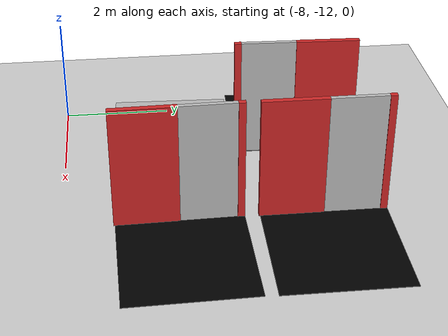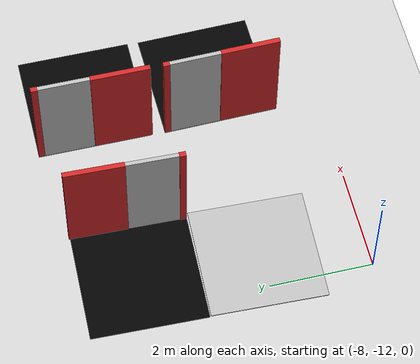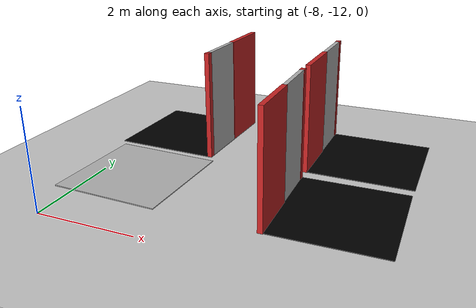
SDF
<sdf version="1.6">
 <world name="default">
  <model name="ground_plane">
   <static>1</static>
   <link name="link">
    <collision name="collision">
     <geometry><plane><normal>0 0 1</normal><size>100 100</size></plane></geometry>
     <surface>
      <contact><collide_bitmask>65535</collide_bitmask></contact>
      <friction><ode><mu>100</mu><mu2>50</mu2></ode></friction>
     </surface>
    </collision>
    <visual name="visual">
     <cast_shadows>0</cast_shadows>
     <geometry><plane><normal>0 0 1</normal><size>100 100</size></plane></geometry>
     <material>
      <script><uri>file://media/materials/scripts/gazebo.material</uri><name>Gazebo/Grey</name></script>
     </material>
    </visual>
   </link>
  </model>
  <model name="elevator_amzn_0">
   <link name="link">
    <inertial>
     <mass>800</mass>
     <inertia><ixx>1</ixx><ixy>0</ixy><ixz>0</ixz><iyy>1</iyy><iyz>0</iyz><izz>1</izz></inertia>
    </inertial>
    <visual name="floor_visual"><geometry><box><size>2.25 2.25 0.02</size></box></geometry></visual>
    <collision name="floor_collision">
     <geometry><box><size>2.25 2.25 0.02</size></box></geometry>
     <surface>
      <friction>
       <ode><mu>1</mu><mu2>1</mu2><fdir1>0 0 0</fdir1><slip1>0</slip1><slip2>0</slip2></ode>
       <torsional>
        <coefficient>1</coefficient>
        <patch_radius>0</patch_radius>
        <surface_radius>0</surface_radius>
        <use_patch_radius>1</use_patch_radius>
        <ode><slip>0</slip></ode>
       </torsional>
      </friction>
      <bounce><restitution_coefficient>0</restitution_coefficient><threshold>1e+06</threshold></bounce>
      <contact>
       <collide_without_contact>0</collide_without_contact>
       <collide_without_contact_bitmask>1</collide_without_contact_bitmask>
       <collide_bitmask>1</collide_bitmask>
       <ode>
        <soft_cfm>0</soft_cfm>
        <soft_erp>0.2</soft_erp>
        <kp>1e+13</kp>
        <kd>1</kd>
        <max_vel>0.01</max_vel>
        <min_depth>0</min_depth>
       </ode>
       <bullet>
        <split_impulse>1</split_impulse>
        <split_impulse_penetration_threshold>-0.01</split_impulse_penetration_threshold>
        <soft_cfm>0</soft_cfm>
        <soft_erp>0.2</soft_erp>
        <kp>1e+13</kp>
        <kd>1</kd>
       </bullet>
      </contact>
     </surface>
    </collision>
   </link>
   <static>0</static>
   <pose>-7.26532 -9.94569 0.009946 0.000173 -9.8e-05 -0.038592</pose>
  </model>
  <model name="elevator_small_ramp_2">
   <link name="link">
    <inertial>
     <mass>800</mass>
     <inertia><ixx>1</ixx><ixy>0</ixy><ixz>0</ixz><iyy>1</iyy><iyz>0</iyz><izz>1</izz></inertia>
    </inertial>
    <visual name="wall1_visual">
     <pose>1.0745 0.5725 1.125 0 -0 0</pose>
     <geometry><box><size>0.1 1.15 2.25</size></box></geometry>
     <material>
      <script><name>Gazebo/Red</name><uri>__default__</uri></script>
      <shader type="vertex"><normal_map>__default__</normal_map></shader>
      <ambient>1 0 0 1</ambient>
      <diffuse>1 0 0 1</diffuse>
      <specular>0.1 0.1 0.1 1</specular>
      <emissive>0 0 0 1</emissive>
     </material>
    </visual>
    <visual name="wall2_visual">
     <pose>1.0745 -1.0625 1.125 0 -0 0</pose>
     <geometry><box><size>0.1 0.125 2.25</size></box></geometry>
     <material>
      <script><name>Gazebo/Red</name><uri>__default__</uri></script>
      <shader type="vertex"><normal_map>__default__</normal_map></shader>
      <ambient>1 0 0 1</ambient>
      <diffuse>1 0 0 1</diffuse>
      <specular>0.1 0.1 0.1 1</specular>
      <emissive>0 0 0 1</emissive>
     </material>
    </visual>
    <visual name="floor_visual">
     <geometry><box><size>2.25 2.25 0.01</size></box></geometry>
     <material>
      <shader type="vertex"><normal_map>__default__</normal_map></shader>
      <script><name>ModelPreview_1::link::floor_visual_MATERIAL_</name><uri>__default__</uri></script>
      <ambient>0 0 0 1</ambient>
      <diffuse>0 0 0 1</diffuse>
      <specular>0 0 0 1</specular>
      <emissive>0 0 0 1</emissive>
     </material>
    </visual>
    <collision name="wall1_collision">
     <pose>1.0745 0.5725 1.125 0 -0 0</pose>
     <geometry><box><size>0.1 1.15 2.25</size></box></geometry>
     <surface>
      <friction>
       <ode><mu>1</mu><mu2>1</mu2><fdir1>0 0 0</fdir1><slip1>0</slip1><slip2>0</slip2></ode>
       <torsional>
        <coefficient>1</coefficient>
        <patch_radius>0</patch_radius>
        <surface_radius>0</surface_radius>
        <use_patch_radius>1</use_patch_radius>
        <ode><slip>0</slip></ode>
       </torsional>
      </friction>
      <bounce><restitution_coefficient>0</restitution_coefficient><threshold>1e+06</threshold></bounce>
      <contact>
       <collide_without_contact>0</collide_without_contact>
       <collide_without_contact_bitmask>1</collide_without_contact_bitmask>
       <collide_bitmask>1</collide_bitmask>
       <ode>
        <soft_cfm>0</soft_cfm>
        <soft_erp>0.2</soft_erp>
        <kp>1e+13</kp>
        <kd>1</kd>
        <max_vel>0.01</max_vel>
        <min_depth>0</min_depth>
       </ode>
       <bullet>
        <split_impulse>1</split_impulse>
        <split_impulse_penetration_threshold>-0.01</split_impulse_penetration_threshold>
        <soft_cfm>0</soft_cfm>
        <soft_erp>0.2</soft_erp>
        <kp>1e+13</kp>
        <kd>1</kd>
       </bullet>
      </contact>
     </surface>
    </collision>
    <collision name="wall2_collision">
     <pose>1.0745 -1.0625 1.125 0 -0 0</pose>
     <geometry><box><size>0.1 0.125 2.25</size></box></geometry>
     <surface>
      <friction>
       <ode><mu>1</mu><mu2>1</mu2><fdir1>0 0 0</fdir1><slip1>0</slip1><slip2>0</slip2></ode>
       <torsional>
        <coefficient>1</coefficient>
        <patch_radius>0</patch_radius>
        <surface_radius>0</surface_radius>
        <use_patch_radius>1</use_patch_radius>
        <ode><slip>0</slip></ode>
       </torsional>
      </friction>
      <bounce><restitution_coefficient>0</restitution_coefficient><threshold>1e+06</threshold></bounce>
      <contact>
       <collide_without_contact>0</collide_without_contact>
       <collide_without_contact_bitmask>1</collide_without_contact_bitmask>
       <collide_bitmask>1</collide_bitmask>
       <ode>
        <soft_cfm>0</soft_cfm>
        <soft_erp>0.2</soft_erp>
        <kp>1e+13</kp>
        <kd>1</kd>
        <max_vel>0.01</max_vel>
        <min_depth>0</min_depth>
       </ode>
       <bullet>
        <split_impulse>1</split_impulse>
        <split_impulse_penetration_threshold>-0.01</split_impulse_penetration_threshold>
        <soft_cfm>0</soft_cfm>
        <soft_erp>0.2</soft_erp>
        <kp>1e+13</kp>
        <kd>1</kd>
       </bullet>
      </contact>
     </surface>
    </collision>
    <collision name="floor_collision">
     <geometry><box><size>2.25 2.25 0.15</size></box></geometry>
     <surface>
      <friction>
       <ode><mu>1</mu><mu2>1</mu2><fdir1>0 0 0</fdir1><slip1>0</slip1><slip2>0</slip2></ode>
       <torsional>
        <coefficient>1</coefficient>
        <patch_radius>0</patch_radius>
        <surface_radius>0</surface_radius>
        <use_patch_radius>1</use_patch_radius>
        <ode><slip>0</slip></ode>
       </torsional>
      </friction>
      <bounce><restitution_coefficient>0</restitution_coefficient><threshold>1e+06</threshold></bounce>
      <contact>
       <collide_without_contact>0</collide_without_contact>
       <collide_without_contact_bitmask>1</collide_without_contact_bitmask>
       <collide_bitmask>1</collide_bitmask>
       <ode>
        <soft_cfm>0</soft_cfm>
        <soft_erp>0.2</soft_erp>
        <kp>1e+13</kp>
        <kd>1</kd>
        <max_vel>0.01</max_vel>
        <min_depth>0</min_depth>
       </ode>
       <bullet>
        <split_impulse>1</split_impulse>
        <split_impulse_penetration_threshold>-0.01</split_impulse_penetration_threshold>
        <soft_cfm>0</soft_cfm>
        <soft_erp>0.2</soft_erp>
        <kp>1e+13</kp>
        <kd>1</kd>
       </bullet>
      </contact>
     </surface>
    </collision>
   </link>
   <link name="door">
    <pose>1.0745 -0.5 1.125 0 -0 0</pose>
    <inertial>
     <inertia><ixx>1</ixx><ixy>0</ixy><ixz>0</ixz><iyy>1</iyy><iyz>0</iyz><izz>1</izz></inertia>
     <mass>1</mass>
    </inertial>
    <visual name="visual"><geometry><box><size>0.08 1 2.25</size></box></geometry></visual>
    <collision name="collision">
     <geometry><box><size>0.08 1 2.25</size></box></geometry>
     <surface>
      <friction>
       <ode><mu>1</mu><mu2>1</mu2><fdir1>0 0 0</fdir1><slip1>0</slip1><slip2>0</slip2></ode>
       <torsional>
        <coefficient>1</coefficient>
        <patch_radius>0</patch_radius>
        <surface_radius>0</surface_radius>
        <use_patch_radius>1</use_patch_radius>
        <ode><slip>0</slip></ode>
       </torsional>
      </friction>
      <bounce><restitution_coefficient>0</restitution_coefficient><threshold>1e+06</threshold></bounce>
      <contact>
       <collide_without_contact>0</collide_without_contact>
       <collide_without_contact_bitmask>1</collide_without_contact_bitmask>
       <collide_bitmask>1</collide_bitmask>
       <ode>
        <soft_cfm>0</soft_cfm>
        <soft_erp>0.2</soft_erp>
        <kp>1e+13</kp>
        <kd>1</kd>
        <max_vel>0.01</max_vel>
        <min_depth>0</min_depth>
       </ode>
       <bullet>
        <split_impulse>1</split_impulse>
        <split_impulse_penetration_threshold>-0.01</split_impulse_penetration_threshold>
        <soft_cfm>0</soft_cfm>
        <soft_erp>0.2</soft_erp>
        <kp>1e+13</kp>
        <kd>1</kd>
       </bullet>
      </contact>
     </surface>
    </collision>
   </link>
   <joint name="door" type="prismatic">
    <parent>link</parent>
    <child>door</child>
    <axis>
     <xyz>0 1 0</xyz>
     <use_parent_model_frame>0</use_parent_model_frame>
     <limit><lower>0</lower><upper>1</upper><effort>10</effort><velocity>-1</velocity></limit>
     <dynamics>
      <spring_reference>0</spring_reference>
      <spring_stiffness>0</spring_stiffness>
      <damping>2</damping>
      <friction>0</friction>
     </dynamics>
    </axis>
    <physics>
     <ode><limit><cfm>0</cfm><erp>0.2</erp></limit><suspension><cfm>0</cfm><erp>0.2</erp></suspension></ode>
    </physics>
   </joint>
   <static>0</static>
   <plugin name="elevator_plugin" filename="libElevatorPlugin.so">
    <lift_joint>elevator::lift</lift_joint>
    <door_joint>elevator::door</door_joint>
    <floor_height>3.075</floor_height>
    <door_wait_time>10</door_wait_time>
    <topic>~/elevator</topic>
   </plugin>
   <pose>-7.23637 -7.65879 0.074759 0.000288 8.2e-05 -0.03202</pose>
  </model>
  <model name="elevator_small_ramp_2_0">
   <link name="link">
    <inertial>
     <mass>800</mass>
     <inertia><ixx>1</ixx><ixy>0</ixy><ixz>0</ixz><iyy>1</iyy><iyz>0</iyz><izz>1</izz></inertia>
    </inertial>
    <visual name="wall1_visual">
     <pose>1.0745 0.5725 1.125 0 -0 0</pose>
     <geometry><box><size>0.1 1.15 2.25</size></box></geometry>
     <material>
      <script><name>Gazebo/Red</name><uri>__default__</uri></script>
      <shader type="vertex"><normal_map>__default__</normal_map></shader>
      <ambient>1 0 0 1</ambient>
      <diffuse>1 0 0 1</diffuse>
      <specular>0.1 0.1 0.1 1</specular>
      <emissive>0 0 0 1</emissive>
     </material>
    </visual>
    <visual name="wall2_visual">
     <pose>1.0745 -1.0625 1.125 0 -0 0</pose>
     <geometry><box><size>0.1 0.125 2.25</size></box></geometry>
     <material>
      <script><name>Gazebo/Red</name><uri>__default__</uri></script>
      <shader type="vertex"><normal_map>__default__</normal_map></shader>
      <ambient>1 0 0 1</ambient>
      <diffuse>1 0 0 1</diffuse>
      <specular>0.1 0.1 0.1 1</specular>
      <emissive>0 0 0 1</emissive>
     </material>
    </visual>
    <visual name="floor_visual">
     <geometry><box><size>2.25 2.25 0.01</size></box></geometry>
     <material>
      <shader type="vertex"><normal_map>__default__</normal_map></shader>
      <script><name>ModelPreview_1::link::floor_visual_MATERIAL_</name><uri>__default__</uri></script>
      <ambient>0 0 0 1</ambient>
      <diffuse>0 0 0 1</diffuse>
      <specular>0 0 0 1</specular>
      <emissive>0 0 0 1</emissive>
     </material>
    </visual>
    <collision name="wall1_collision">
     <pose>1.0745 0.5725 1.125 0 -0 0</pose>
     <geometry><box><size>0.1 1.15 2.25</size></box></geometry>
     <surface>
      <friction>
       <ode><mu>1</mu><mu2>1</mu2><fdir1>0 0 0</fdir1><slip1>0</slip1><slip2>0</slip2></ode>
       <torsional>
        <coefficient>1</coefficient>
        <patch_radius>0</patch_radius>
        <surface_radius>0</surface_radius>
        <use_patch_radius>1</use_patch_radius>
        <ode><slip>0</slip></ode>
       </torsional>
      </friction>
      <bounce><restitution_coefficient>0</restitution_coefficient><threshold>1e+06</threshold></bounce>
      <contact>
       <collide_without_contact>0</collide_without_contact>
       <collide_without_contact_bitmask>1</collide_without_contact_bitmask>
       <collide_bitmask>1</collide_bitmask>
       <ode>
        <soft_cfm>0</soft_cfm>
        <soft_erp>0.2</soft_erp>
        <kp>1e+13</kp>
        <kd>1</kd>
        <max_vel>0.01</max_vel>
        <min_depth>0</min_depth>
       </ode>
       <bullet>
        <split_impulse>1</split_impulse>
        <split_impulse_penetration_threshold>-0.01</split_impulse_penetration_threshold>
        <soft_cfm>0</soft_cfm>
        <soft_erp>0.2</soft_erp>
        <kp>1e+13</kp>
        <kd>1</kd>
       </bullet>
      </contact>
     </surface>
    </collision>
    <collision name="wall2_collision">
     <pose>1.0745 -1.0625 1.125 0 -0 0</pose>
     <geometry><box><size>0.1 0.125 2.25</size></box></geometry>
     <surface>
      <friction>
       <ode><mu>1</mu><mu2>1</mu2><fdir1>0 0 0</fdir1><slip1>0</slip1><slip2>0</slip2></ode>
       <torsional>
        <coefficient>1</coefficient>
        <patch_radius>0</patch_radius>
        <surface_radius>0</surface_radius>
        <use_patch_radius>1</use_patch_radius>
        <ode><slip>0</slip></ode>
       </torsional>
      </friction>
      <bounce><restitution_coefficient>0</restitution_coefficient><threshold>1e+06</threshold></bounce>
      <contact>
       <collide_without_contact>0</collide_without_contact>
       <collide_without_contact_bitmask>1</collide_without_contact_bitmask>
       <collide_bitmask>1</collide_bitmask>
       <ode>
        <soft_cfm>0</soft_cfm>
        <soft_erp>0.2</soft_erp>
        <kp>1e+13</kp>
        <kd>1</kd>
        <max_vel>0.01</max_vel>
        <min_depth>0</min_depth>
       </ode>
       <bullet>
        <split_impulse>1</split_impulse>
        <split_impulse_penetration_threshold>-0.01</split_impulse_penetration_threshold>
        <soft_cfm>0</soft_cfm>
        <soft_erp>0.2</soft_erp>
        <kp>1e+13</kp>
        <kd>1</kd>
       </bullet>
      </contact>
     </surface>
    </collision>
    <collision name="floor_collision">
     <geometry><box><size>2.25 2.25 0.15</size></box></geometry>
     <surface>
      <friction>
       <ode><mu>1</mu><mu2>1</mu2><fdir1>0 0 0</fdir1><slip1>0</slip1><slip2>0</slip2></ode>
       <torsional>
        <coefficient>1</coefficient>
        <patch_radius>0</patch_radius>
        <surface_radius>0</surface_radius>
        <use_patch_radius>1</use_patch_radius>
        <ode><slip>0</slip></ode>
       </torsional>
      </friction>
      <bounce><restitution_coefficient>0</restitution_coefficient><threshold>1e+06</threshold></bounce>
      <contact>
       <collide_without_contact>0</collide_without_contact>
       <collide_without_contact_bitmask>1</collide_without_contact_bitmask>
       <collide_bitmask>1</collide_bitmask>
       <ode>
        <soft_cfm>0</soft_cfm>
        <soft_erp>0.2</soft_erp>
        <kp>1e+13</kp>
        <kd>1</kd>
        <max_vel>0.01</max_vel>
        <min_depth>0</min_depth>
       </ode>
       <bullet>
        <split_impulse>1</split_impulse>
        <split_impulse_penetration_threshold>-0.01</split_impulse_penetration_threshold>
        <soft_cfm>0</soft_cfm>
        <soft_erp>0.2</soft_erp>
        <kp>1e+13</kp>
        <kd>1</kd>
       </bullet>
      </contact>
     </surface>
    </collision>
   </link>
   <link name="door">
    <pose>1.0745 -0.5 1.125 0 -0 0</pose>
    <inertial>
     <inertia><ixx>1</ixx><ixy>0</ixy><ixz>0</ixz><iyy>1</iyy><iyz>0</iyz><izz>1</izz></inertia>
     <mass>1</mass>
    </inertial>
    <visual name="visual"><geometry><box><size>0.08 1 2.25</size></box></geometry></visual>
    <collision name="collision">
     <geometry><box><size>0.08 1 2.25</size></box></geometry>
     <surface>
      <friction>
       <ode><mu>1</mu><mu2>1</mu2><fdir1>0 0 0</fdir1><slip1>0</slip1><slip2>0</slip2></ode>
       <torsional>
        <coefficient>1</coefficient>
        <patch_radius>0</patch_radius>
        <surface_radius>0</surface_radius>
        <use_patch_radius>1</use_patch_radius>
        <ode><slip>0</slip></ode>
       </torsional>
      </friction>
      <bounce><restitution_coefficient>0</restitution_coefficient><threshold>1e+06</threshold></bounce>
      <contact>
       <collide_without_contact>0</collide_without_contact>
       <collide_without_contact_bitmask>1</collide_without_contact_bitmask>
       <collide_bitmask>1</collide_bitmask>
       <ode>
        <soft_cfm>0</soft_cfm>
        <soft_erp>0.2</soft_erp>
        <kp>1e+13</kp>
        <kd>1</kd>
        <max_vel>0.01</max_vel>
        <min_depth>0</min_depth>
       </ode>
       <bullet>
        <split_impulse>1</split_impulse>
        <split_impulse_penetration_threshold>-0.01</split_impulse_penetration_threshold>
        <soft_cfm>0</soft_cfm>
        <soft_erp>0.2</soft_erp>
        <kp>1e+13</kp>
        <kd>1</kd>
       </bullet>
      </contact>
     </surface>
    </collision>
   </link>
   <joint name="door" type="prismatic">
    <parent>link</parent>
    <child>door</child>
    <axis>
     <xyz>0 1 0</xyz>
     <use_parent_model_frame>0</use_parent_model_frame>
     <limit><lower>0</lower><upper>1</upper><effort>10</effort><velocity>-1</velocity></limit>
     <dynamics>
      <spring_reference>0</spring_reference>
      <spring_stiffness>0</spring_stiffness>
      <damping>2</damping>
      <friction>0</friction>
     </dynamics>
    </axis>
    <physics>
     <ode><limit><cfm>0</cfm><erp>0.2</erp></limit><suspension><cfm>0</cfm><erp>0.2</erp></suspension></ode>
    </physics>
   </joint>
   <static>0</static>
   <plugin name="elevator_plugin" filename="libElevatorPlugin.so">
    <lift_joint>elevator::lift</lift_joint>
    <door_joint>elevator::door</door_joint>
    <floor_height>3.075</floor_height>
    <door_wait_time>10</door_wait_time>
    <topic>~/elevator</topic>
   </plugin>
   <pose>-3.06483 -7.48 0 6e-06 -0.002048 3.13852</pose>
  </model>
  <model name="elevator_small_ramp">
   <link name="link">
    <inertial>
     <mass>800</mass>
     <inertia><ixx>1</ixx><ixy>0</ixy><ixz>0</ixz><iyy>1</iyy><iyz>0</iyz><izz>1</izz></inertia>
    </inertial>
    <visual name="floor_visual">
     <geometry><box><size>2.25 2.25 0.01</size></box></geometry>
     <material>
      <shader type="vertex"><normal_map>__default__</normal_map></shader>
      <script><name>ModelPreview_1::link::floor_visual_MATERIAL_</name><uri>__default__</uri></script>
      <ambient>0 0 0 1</ambient>
      <diffuse>0 0 0 1</diffuse>
      <specular>0 0 0 1</specular>
      <emissive>0 0 0 1</emissive>
     </material>
    </visual>
    <visual name="wall1_visual">
     <pose>1.0745 0.5725 1.125 0 -0 0</pose>
     <geometry><box><size>0.1 1.15 2.25</size></box></geometry>
     <material>
      <script><name>Gazebo/Red</name><uri>__default__</uri></script>
      <shader type="vertex"><normal_map>__default__</normal_map></shader>
      <ambient>1 0 0 1</ambient>
      <diffuse>1 0 0 1</diffuse>
      <specular>0.1 0.1 0.1 1</specular>
      <emissive>0 0 0 1</emissive>
     </material>
    </visual>
    <visual name="wall2_visual">
     <pose>1.0745 -1.0625 1.125 0 -0 0</pose>
     <geometry><box><size>0.1 0.125 2.25</size></box></geometry>
     <material>
      <script><name>Gazebo/Red</name><uri>__default__</uri></script>
      <shader type="vertex"><normal_map>__default__</normal_map></shader>
      <ambient>1 0 0 1</ambient>
      <diffuse>1 0 0 1</diffuse>
      <specular>0.1 0.1 0.1 1</specular>
      <emissive>0 0 0 1</emissive>
     </material>
    </visual>
    <collision name="wall1_collision">
     <pose>1.0745 0.5725 1.125 0 -0 0</pose>
     <geometry><box><size>0.1 1.15 2.25</size></box></geometry>
     <surface>
      <friction>
       <ode><mu>1</mu><mu2>1</mu2><fdir1>0 0 0</fdir1><slip1>0</slip1><slip2>0</slip2></ode>
       <torsional>
        <coefficient>1</coefficient>
        <patch_radius>0</patch_radius>
        <surface_radius>0</surface_radius>
        <use_patch_radius>1</use_patch_radius>
        <ode><slip>0</slip></ode>
       </torsional>
      </friction>
      <bounce><restitution_coefficient>0</restitution_coefficient><threshold>1e+06</threshold></bounce>
      <contact>
       <collide_without_contact>0</collide_without_contact>
       <collide_without_contact_bitmask>1</collide_without_contact_bitmask>
       <collide_bitmask>1</collide_bitmask>
       <ode>
        <soft_cfm>0</soft_cfm>
        <soft_erp>0.2</soft_erp>
        <kp>1e+13</kp>
        <kd>1</kd>
        <max_vel>0.01</max_vel>
        <min_depth>0</min_depth>
       </ode>
       <bullet>
        <split_impulse>1</split_impulse>
        <split_impulse_penetration_threshold>-0.01</split_impulse_penetration_threshold>
        <soft_cfm>0</soft_cfm>
        <soft_erp>0.2</soft_erp>
        <kp>1e+13</kp>
        <kd>1</kd>
       </bullet>
      </contact>
     </surface>
    </collision>
    <collision name="wall2_collision">
     <pose>1.0745 -1.0625 1.125 0 -0 0</pose>
     <geometry><box><size>0.1 0.125 2.25</size></box></geometry>
     <surface>
      <friction>
       <ode><mu>1</mu><mu2>1</mu2><fdir1>0 0 0</fdir1><slip1>0</slip1><slip2>0</slip2></ode>
       <torsional>
        <coefficient>1</coefficient>
        <patch_radius>0</patch_radius>
        <surface_radius>0</surface_radius>
        <use_patch_radius>1</use_patch_radius>
        <ode><slip>0</slip></ode>
       </torsional>
      </friction>
      <bounce><restitution_coefficient>0</restitution_coefficient><threshold>1e+06</threshold></bounce>
      <contact>
       <collide_without_contact>0</collide_without_contact>
       <collide_without_contact_bitmask>1</collide_without_contact_bitmask>
       <collide_bitmask>1</collide_bitmask>
       <ode>
        <soft_cfm>0</soft_cfm>
        <soft_erp>0.2</soft_erp>
        <kp>1e+13</kp>
        <kd>1</kd>
        <max_vel>0.01</max_vel>
        <min_depth>0</min_depth>
       </ode>
       <bullet>
        <split_impulse>1</split_impulse>
        <split_impulse_penetration_threshold>-0.01</split_impulse_penetration_threshold>
        <soft_cfm>0</soft_cfm>
        <soft_erp>0.2</soft_erp>
        <kp>1e+13</kp>
        <kd>1</kd>
       </bullet>
      </contact>
     </surface>
    </collision>
    <collision name="floor_collision">
     <geometry><box><size>2.25 2.25 0.15</size></box></geometry>
     <surface>
      <friction>
       <ode><mu>1</mu><mu2>1</mu2><fdir1>0 0 0</fdir1><slip1>0</slip1><slip2>0</slip2></ode>
       <torsional>
        <coefficient>1</coefficient>
        <patch_radius>0</patch_radius>
        <surface_radius>0</surface_radius>
        <use_patch_radius>1</use_patch_radius>
        <ode><slip>0</slip></ode>
       </torsional>
      </friction>
      <bounce><restitution_coefficient>0</restitution_coefficient><threshold>1e+06</threshold></bounce>
      <contact>
       <collide_without_contact>0</collide_without_contact>
       <collide_without_contact_bitmask>1</collide_without_contact_bitmask>
       <collide_bitmask>1</collide_bitmask>
       <ode>
        <soft_cfm>0</soft_cfm>
        <soft_erp>0.2</soft_erp>
        <kp>1e+13</kp>
        <kd>1</kd>
        <max_vel>0.01</max_vel>
        <min_depth>0</min_depth>
       </ode>
       <bullet>
        <split_impulse>1</split_impulse>
        <split_impulse_penetration_threshold>-0.01</split_impulse_penetration_threshold>
        <soft_cfm>0</soft_cfm>
        <soft_erp>0.2</soft_erp>
        <kp>1e+13</kp>
        <kd>1</kd>
       </bullet>
      </contact>
     </surface>
    </collision>
   </link>
   <link name="door">
    <pose>1.0745 -0.5 1.125 0 -0 0</pose>
    <inertial>
     <inertia><ixx>1</ixx><ixy>0</ixy><ixz>0</ixz><iyy>1</iyy><iyz>0</iyz><izz>1</izz></inertia>
     <mass>1</mass>
    </inertial>
    <visual name="visual"><geometry><box><size>0.08 1 2.25</size></box></geometry></visual>
    <collision name="collision">
     <geometry><box><size>0.08 1 2.25</size></box></geometry>
     <surface>
      <friction>
       <ode><mu>1</mu><mu2>1</mu2><fdir1>0 0 0</fdir1><slip1>0</slip1><slip2>0</slip2></ode>
       <torsional>
        <coefficient>1</coefficient>
        <patch_radius>0</patch_radius>
        <surface_radius>0</surface_radius>
        <use_patch_radius>1</use_patch_radius>
        <ode><slip>0</slip></ode>
       </torsional>
      </friction>
      <bounce><restitution_coefficient>0</restitution_coefficient><threshold>1e+06</threshold></bounce>
      <contact>
       <collide_without_contact>0</collide_without_contact>
       <collide_without_contact_bitmask>1</collide_without_contact_bitmask>
       <collide_bitmask>1</collide_bitmask>
       <ode>
        <soft_cfm>0</soft_cfm>
        <soft_erp>0.2</soft_erp>
        <kp>1e+13</kp>
        <kd>1</kd>
        <max_vel>0.01</max_vel>
        <min_depth>0</min_depth>
       </ode>
       <bullet>
        <split_impulse>1</split_impulse>
        <split_impulse_penetration_threshold>-0.01</split_impulse_penetration_threshold>
        <soft_cfm>0</soft_cfm>
        <soft_erp>0.2</soft_erp>
        <kp>1e+13</kp>
        <kd>1</kd>
       </bullet>
      </contact>
     </surface>
    </collision>
   </link>
   <joint name="door" type="prismatic">
    <parent>link</parent>
    <child>door</child>
    <axis>
     <xyz>0 1 0</xyz>
     <use_parent_model_frame>0</use_parent_model_frame>
     <limit><lower>0</lower><upper>1</upper><effort>10</effort><velocity>-1</velocity></limit>
     <dynamics>
      <spring_reference>0</spring_reference>
      <spring_stiffness>0</spring_stiffness>
      <damping>2</damping>
      <friction>0</friction>
     </dynamics>
    </axis>
    <physics>
     <ode><limit><cfm>0</cfm><erp>0.2</erp></limit><suspension><cfm>0</cfm><erp>0.2</erp></suspension></ode>
    </physics>
   </joint>
   <static>0</static>
   <plugin name="elevator_plugin" filename="libElevatorPlugin.so">
    <lift_joint>elevator::lift</lift_joint>
    <door_joint>elevator::door</door_joint>
    <floor_height>3.075</floor_height>
    <door_wait_time>10</door_wait_time>
    <topic>~/elevator</topic>
   </plugin>
   <pose>-3.06258 -9.97265 0 -8e-05 -0.004198 -3.12253</pose>
  </model>
 </world>
</sdf>
